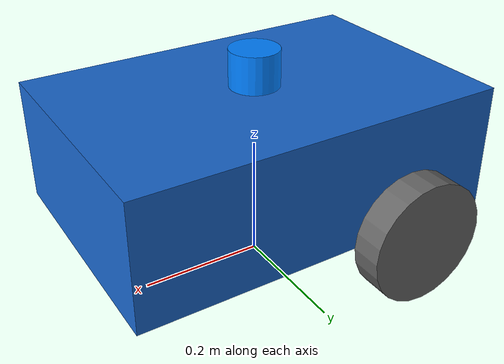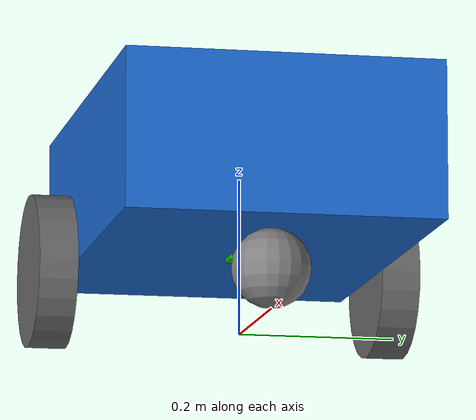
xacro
<?xml version="1.0"?>
<robot name="fms_robot" xmlns:xacro="http://www.ros.org/wiki/xacro">

  <xacro:arg name="robot_name" default="robot_1"/>

  <!-- Dimensions (from mobile_base.xacro reference design) -->
  <xacro:property name="base_length"   value="0.6"/>
  <xacro:property name="base_width"    value="0.4"/>
  <xacro:property name="base_height"   value="0.2"/>
  <xacro:property name="wheel_radius"  value="0.1"/>
  <xacro:property name="wheel_length"  value="0.05"/>
  <xacro:property name="caster_radius" value="0.05"/>

  <!-- Inertia helpers -->
  <xacro:macro name="box_inertia" params="m x y z">
    <inertial>
      <mass value="${m}"/>
      <inertia ixx="${m*(y*y+z*z)/12}" ixy="0" ixz="0"
               iyy="${m*(x*x+z*z)/12}" iyz="0"
               izz="${m*(x*x+y*y)/12}"/>
    </inertial>
  </xacro:macro>

  <xacro:macro name="cylinder_inertia" params="m r h">
    <inertial>
      <mass value="${m}"/>
      <inertia ixx="${m*(3*r*r+h*h)/12}" ixy="0" ixz="0"
               iyy="${m*(3*r*r+h*h)/12}" iyz="0"
               izz="${m*r*r/2}"/>
    </inertial>
  </xacro:macro>

  <xacro:macro name="sphere_inertia" params="m r">
    <inertial>
      <mass value="${m}"/>
      <inertia ixx="${2*m*r*r/5}" ixy="0" ixz="0"
               iyy="${2*m*r*r/5}" iyz="0"
               izz="${2*m*r*r/5}"/>
    </inertial>
  </xacro:macro>

  <link name="base_footprint">
    <xacro:sphere_inertia m="0.0001" r="0.0001"/>
  </link>

  <joint name="base_joint" type="fixed">
    <parent link="base_footprint"/>
    <child  link="base_link"/>
    <origin xyz="0 0 ${wheel_radius}" rpy="0 0 0"/>
  </joint>

  <gazebo reference="base_joint">
    <preserveFixedJoint>true</preserveFixedJoint>
  </gazebo>

  <!-- ===== BASE LINK ===== -->
  <link name="base_link">
    <visual>
      <geometry>
        <box size="${base_length} ${base_width} ${base_height}"/>
      </geometry>
      <origin xyz="0 0 ${base_height/2.0}" rpy="0 0 0"/>
      <material name="blue"><color rgba="0.1 0.4 0.8 1.0"/></material>
    </visual>
    <collision>
      <geometry>
        <box size="${base_length} ${base_width} ${base_height}"/>
      </geometry>
      <origin xyz="0 0 ${base_height/2.0}" rpy="0 0 0"/>
    </collision>
    <xacro:box_inertia m="5.0" x="${base_length}" y="${base_width}" z="${base_height}"/>
  </link>

  <!-- ===== WHEELS ===== -->
  <xacro:macro name="wheel_link" params="prefix">
    <link name="${prefix}_link">
      <visual>
        <geometry>
          <cylinder radius="${wheel_radius}" length="${wheel_length}"/>
        </geometry>
        <origin xyz="0 0 0" rpy="0 0 0"/>
        <material name="grey"><color rgba="0.4 0.4 0.4 1.0"/></material>
      </visual>
      <collision>
        <geometry><sphere radius="${wheel_radius}"/></geometry>
        <origin xyz="0 0 0" rpy="0 0 0"/>
      </collision>
      <xacro:cylinder_inertia m="1.0" r="${wheel_radius}" h="${wheel_length}"/>
    </link>
  </xacro:macro>

  <xacro:wheel_link prefix="right_wheel"/>
  <xacro:wheel_link prefix="left_wheel"/>

  <joint name="base_right_wheel_joint" type="continuous">
    <parent link="base_link"/>
    <child  link="right_wheel_link"/>
    <origin xyz="${-base_length/4.0} ${-(base_width+wheel_length)/2.0} 0"
            rpy="${pi/2.0} 0 0"/>
    <axis xyz="0 0 -1"/>
    <dynamics damping="0.1" friction="0.1"/>
  </joint>

  <joint name="base_left_wheel_joint" type="continuous">
    <parent link="base_link"/>
    <child  link="left_wheel_link"/>
    <origin xyz="${-base_length/4.0} ${(base_width+wheel_length)/2.0} 0"
            rpy="${pi/2.0} 0 0"/>
    <axis xyz="0 0 -1"/>
    <dynamics damping="0.1" friction="0.1"/>
  </joint>

  <!-- ===== CASTER ===== -->
  <link name="caster_wheel_link">
    <visual>
      <geometry><sphere radius="${caster_radius}"/></geometry>
      <material name="grey"><color rgba="0.5 0.5 0.5 1.0"/></material>
    </visual>
    <collision>
      <geometry><sphere radius="${caster_radius}"/></geometry>
    </collision>
    <xacro:sphere_inertia m="0.5" r="${caster_radius}"/>
  </link>

  <joint name="base_caster_wheel_joint" type="fixed">
    <parent link="base_link"/>
    <child  link="caster_wheel_link"/>
    <origin xyz="${base_length/3.0} 0 ${-wheel_radius/2.0}" rpy="0 0 0"/>
  </joint>

  <!-- ===== LIDAR ===== -->
  <link name="lidar_link">
    <visual>
      <geometry><cylinder radius="0.04" length="0.06"/></geometry>
      <material name="blue_bright"><color rgba="0.0 0.5 1.0 1.0"/></material>
    </visual>
    <collision>
      <geometry><cylinder radius="0.04" length="0.06"/></geometry>
    </collision>
    <inertial>
      <mass value="0.2"/>
      <inertia ixx="0.0001" ixy="0" ixz="0" iyy="0.0001" iyz="0" izz="0.0001"/>
    </inertial>
  </link>

  <joint name="lidar_joint" type="fixed">
    <parent link="base_link"/>
    <child  link="lidar_link"/>
    <origin xyz="0 0 ${base_height + 0.03}" rpy="0 0 0"/>
  </joint>

  <!-- ===== IMU ===== -->
  <link name="imu_link">
    <visual>
      <geometry><box size="0.03 0.03 0.01"/></geometry>
      <material name="green"><color rgba="0.0 0.8 0.0 1.0"/></material>
    </visual>
    <inertial>
      <mass value="0.01"/>
      <inertia ixx="0.000001" ixy="0" ixz="0" iyy="0.000001" iyz="0" izz="0.000001"/>
    </inertial>
  </link>

  <joint name="imu_joint" type="fixed">
    <parent link="base_link"/>
    <child  link="imu_link"/>
    <origin xyz="0 0 0" rpy="0 0 0"/>
  </joint>

  <!-- ===== GAZEBO physics ===== -->
  <gazebo reference="caster_wheel_link">
    <mu1>0.1</mu1><mu2>0.1</mu2>
  </gazebo>
  <gazebo reference="left_wheel_link">
    <mu1>1.0</mu1><mu2>1.0</mu2><kp>1000000.0</kp><kd>100.0</kd><minDepth>0.001</minDepth>
  </gazebo>
  <gazebo reference="right_wheel_link">
    <mu1>1.0</mu1><mu2>1.0</mu2><kp>1000000.0</kp><kd>100.0</kd><minDepth>0.001</minDepth>
  </gazebo>

  <gazebo>
    <plugin filename="gz-sim-diff-drive-system"
            name="gz::sim::systems::DiffDrive">
      <left_joint>base_left_wheel_joint</left_joint>
      <right_joint>base_right_wheel_joint</right_joint>
      <wheel_separation>${base_width + wheel_length}</wheel_separation>
      <wheel_radius>${wheel_radius}</wheel_radius>
      <odom_publish_frequency>20</odom_publish_frequency>
      <topic>/$(arg robot_name)/cmd_vel</topic>
      <odom_topic>/$(arg robot_name)/odom</odom_topic>
      <tf_topic>/$(arg robot_name)/tf</tf_topic>
      <frame_id>$(arg robot_name)/odom</frame_id>
      <child_frame_id>$(arg robot_name)/base_footprint</child_frame_id>
      <min_velocity>-1.0</min_velocity>
      <max_velocity>1.0</max_velocity>
      <min_acceleration>-3.0</min_acceleration>
      <max_acceleration>3.0</max_acceleration>
    </plugin>
  </gazebo>

  <!-- ===== GAZEBO: Joint State Publisher ===== -->
  <gazebo>
    <plugin filename="gz-sim-joint-state-publisher-system"
            name="gz::sim::systems::JointStatePublisher">
      <topic>/$(arg robot_name)/joint_states</topic>
      <joint_name>base_left_wheel_joint</joint_name>
      <joint_name>base_right_wheel_joint</joint_name>
    </plugin>
  </gazebo>

  <!-- ===== GAZEBO: 2D Lidar =====
       reference="lidar_link" — plain name, no slash — Gazebo finds it correctly. -->
  <gazebo reference="lidar_link">
    <sensor name="lidar" type="gpu_lidar">
      <pose>0 0 0 0 0 0</pose>
      <topic>/$(arg robot_name)/scan</topic>
      <update_rate>10</update_rate>
      <lidar>
        <scan>
          <horizontal>
            <samples>360</samples>
            <resolution>1</resolution>
            <min_angle>-3.14159</min_angle>
            <max_angle>3.14159</max_angle>
          </horizontal>
        </scan>
        <range>
          <min>0.12</min>
          <max>12.0</max>
          <resolution>0.01</resolution>
        </range>
        <noise>
          <type>gaussian</type><mean>0.0</mean><stddev>0.01</stddev>
        </noise>
      </lidar>
      <always_on>true</always_on>
      <visualize>false</visualize>
    </sensor>
  </gazebo>

  <!-- ===== GAZEBO: IMU ===== -->
  <gazebo reference="imu_link">
    <sensor name="imu" type="imu">
      <topic>/$(arg robot_name)/imu</topic>
      <update_rate>100</update_rate>
      <always_on>true</always_on>
      <imu>
        <angular_velocity>
          <x><noise type="gaussian"><mean>0.0</mean><stddev>0.002</stddev></noise></x>
          <y><noise type="gaussian"><mean>0.0</mean><stddev>0.002</stddev></noise></y>
          <z><noise type="gaussian"><mean>0.0</mean><stddev>0.002</stddev></noise></z>
        </angular_velocity>
        <linear_acceleration>
          <x><noise type="gaussian"><mean>0.0</mean><stddev>0.017</stddev></noise></x>
          <y><noise type="gaussian"><mean>0.0</mean><stddev>0.017</stddev></noise></y>
          <z><noise type="gaussian"><mean>0.0</mean><stddev>0.017</stddev></noise></z>
        </linear_acceleration>
      </imu>
    </sensor>
  </gazebo>

</robot>
